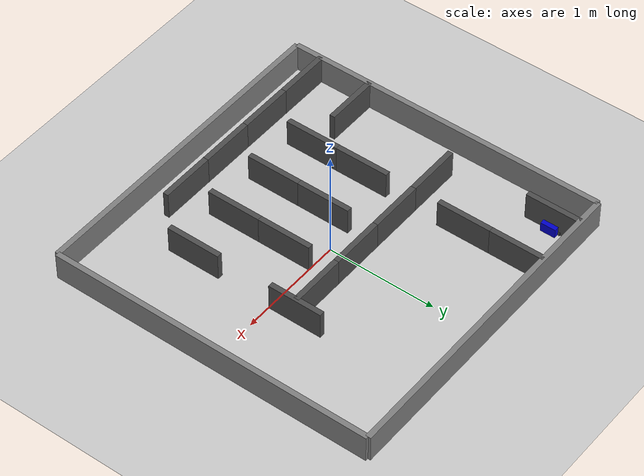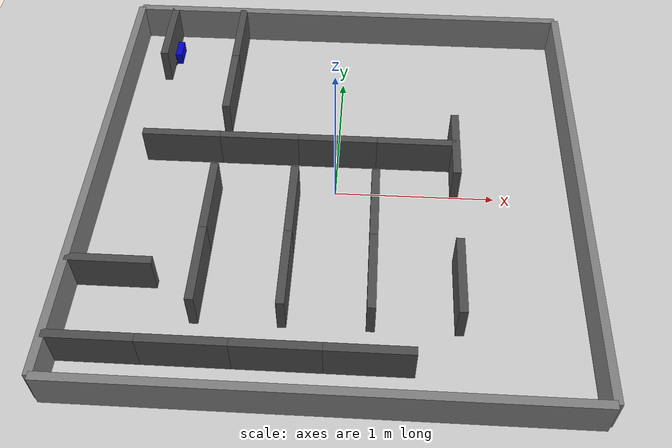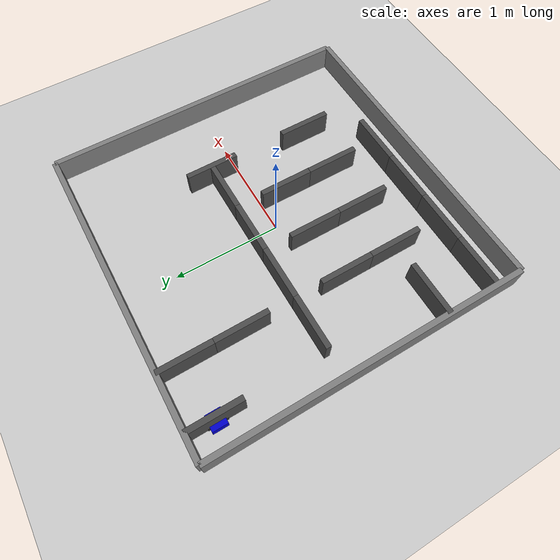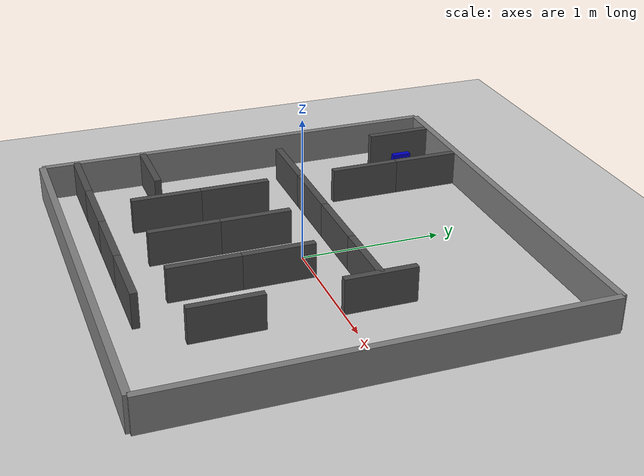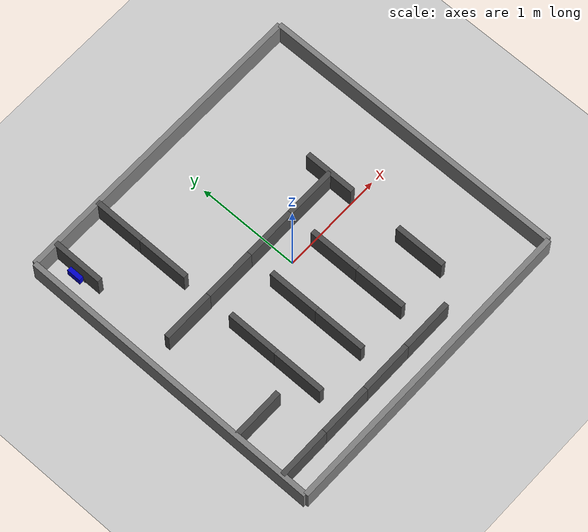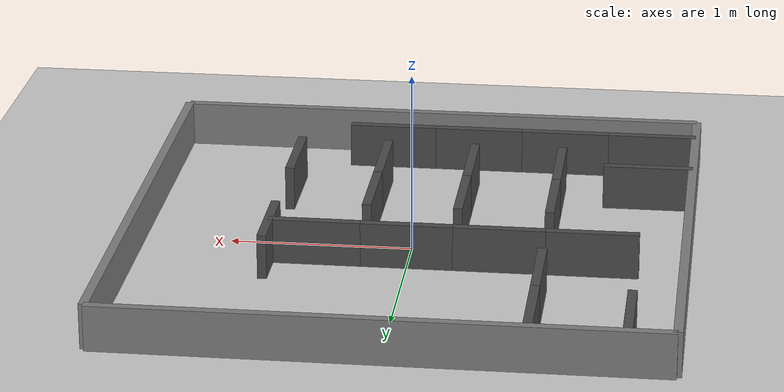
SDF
<?xml version="1.0" ?>
<sdf version="1.8">
  <world name="maze_world">

    <!-- Physics -->
    <physics name="1ms" type="ignored">
      <max_step_size>0.001</max_step_size>
      <real_time_factor>1.0</real_time_factor>
    </physics>

    <!-- Plugin for physics -->
    <plugin
      filename="gz-sim-physics-system"
      name="gz::sim::systems::Physics">
    </plugin>

    <!-- Plugin for user commands -->
    <plugin
      filename="gz-sim-user-commands-system"
      name="gz::sim::systems::UserCommands">
    </plugin>

    <!-- Plugin for scene broadcasting -->
    <plugin
      filename="gz-sim-scene-broadcaster-system"
      name="gz::sim::systems::SceneBroadcaster">
    </plugin>

    <!-- Lighting -->
    <light type="directional" name="sun">
      <cast_shadows>true</cast_shadows>
      <pose>0 0 10 0 0 0</pose>
      <diffuse>0.8 0.8 0.8 1</diffuse>
      <specular>0.2 0.2 0.2 1</specular>
      <attenuation>
        <range>1000</range>
        <constant>0.9</constant>
        <linear>0.01</linear>
        <quadratic>0.001</quadratic>
      </attenuation>
      <direction>-0.5 0.1 -0.9</direction>
    </light>

    <!-- Ground Plane -->
    <model name="ground_plane">
      <static>true</static>
      <link name="link">
        <collision name="collision">
          <geometry>
            <plane>
              <normal>0 0 1</normal>
              <size>10 10</size>
            </plane>
          </geometry>
        </collision>
        <visual name="visual">
          <geometry>
            <plane>
              <normal>0 0 1</normal>
              <size>10 10</size>
            </plane>
          </geometry>
          <material>
            <ambient>0.8 0.8 0.8 1</ambient>
            <diffuse>0.8 0.8 0.8 1</diffuse>
            <specular>0.8 0.8 0.8 1</specular>
          </material>
        </visual>
      </link>
    </model>

    <!-- Outer boundary walls (3m x 3m maze) -->
    <!-- Bottom wall -->
    <model name="wall_bottom">
      <pose>0 -1.5 0.125 0 0 0</pose>
      <static>true</static>
      <link name="link">
        <collision name="collision">
          <geometry>
            <box>
              <size>3.0 0.05 0.25</size>
            </box>
          </geometry>
        </collision>
        <visual name="visual">
          <geometry>
            <box>
              <size>3.0 0.05 0.25</size>
            </box>
          </geometry>
          <material>
            <ambient>0.5 0.5 0.5 1</ambient>
            <diffuse>0.5 0.5 0.5 1</diffuse>
          </material>
        </visual>
      </link>
    </model>

    <!-- Top wall -->
    <model name="wall_top">
      <pose>0 1.5 0.125 0 0 0</pose>
      <static>true</static>
      <link name="link">
        <collision name="collision">
          <geometry>
            <box>
              <size>3.0 0.05 0.25</size>
            </box>
          </geometry>
        </collision>
        <visual name="visual">
          <geometry>
            <box>
              <size>3.0 0.05 0.25</size>
            </box>
          </geometry>
          <material>
            <ambient>0.5 0.5 0.5 1</ambient>
            <diffuse>0.5 0.5 0.5 1</diffuse>
          </material>
        </visual>
      </link>
    </model>

    <!-- Left wall -->
    <model name="wall_left">
      <pose>-1.5 0 0.125 0 0 0</pose>
      <static>true</static>
      <link name="link">
        <collision name="collision">
          <geometry>
            <box>
              <size>0.05 3.0 0.25</size>
            </box>
          </geometry>
        </collision>
        <visual name="visual">
          <geometry>
            <box>
              <size>0.05 3.0 0.25</size>
            </box>
          </geometry>
          <material>
            <ambient>0.5 0.5 0.5 1</ambient>
            <diffuse>0.5 0.5 0.5 1</diffuse>
          </material>
        </visual>
      </link>
    </model>

    <!-- Right wall -->
    <model name="wall_right">
      <pose>1.5 0 0.125 0 0 0</pose>
      <static>true</static>
      <link name="link">
        <collision name="collision">
          <geometry>
            <box>
              <size>0.05 3.0 0.25</size>
            </box>
          </geometry>
        </collision>
        <visual name="visual">
          <geometry>
            <box>
              <size>0.05 3.0 0.25</size>
            </box>
          </geometry>
          <material>
            <ambient>0.5 0.5 0.5 1</ambient>
            <diffuse>0.5 0.5 0.5 1</diffuse>
          </material>
        </visual>
      </link>
    </model>

    <!-- Internal maze walls based on the figure -->
    <!-- Row 0 (top) walls - reading from the image -->
    <model name="wall_r0_c0_right">
      <pose>-1.25 1.25 0.125 0 0 0</pose>
      <static>true</static>
      <link name="link">
        <collision name="collision">
          <geometry>
            <box>
              <size>0.05 0.5 0.25</size>
            </box>
          </geometry>
        </collision>
        <visual name="visual">
          <geometry>
            <box>
              <size>0.05 0.5 0.25</size>
            </box>
          </geometry>
          <material>
            <ambient>0.3 0.3 0.3 1</ambient>
            <diffuse>0.3 0.3 0.3 1</diffuse>
          </material>
        </visual>
      </link>
    </model>

    <model name="wall_r0_c1_right">
      <pose>-0.75 1.25 0.125 0 0 0</pose>
      <static>true</static>
      <link name="link">
        <collision name="collision">
          <geometry>
            <box>
              <size>0.05 0.5 0.25</size>
            </box>
          </geometry>
        </collision>
        <visual name="visual">
          <geometry>
            <box>
              <size>0.05 0.5 0.25</size>
            </box>
          </geometry>
          <material>
            <ambient>0.3 0.3 0.3 1</ambient>
            <diffuse>0.3 0.3 0.3 1</diffuse>
          </material>
        </visual>
      </link>
    </model>

    <!-- Row 1 walls -->
    <model name="wall_r1_c1_right">
      <pose>-0.75 0.75 0.125 0 0 0</pose>
      <static>true</static>
      <link name="link">
        <collision name="collision">
          <geometry>
            <box>
              <size>0.05 0.5 0.25</size>
            </box>
          </geometry>
        </collision>
        <visual name="visual">
          <geometry>
            <box>
              <size>0.05 0.5 0.25</size>
            </box>
          </geometry>
          <material>
            <ambient>0.3 0.3 0.3 1</ambient>
            <diffuse>0.3 0.3 0.3 1</diffuse>
          </material>
        </visual>
      </link>
    </model>

    <!-- Row 2 walls -->
    <model name="wall_r2_c1_bottom">
      <pose>-1.0 0.25 0.125 0 0 0</pose>
      <static>true</static>
      <link name="link">
        <collision name="collision">
          <geometry>
            <box>
              <size>0.5 0.05 0.25</size>
            </box>
          </geometry>
        </collision>
        <visual name="visual">
          <geometry>
            <box>
              <size>0.5 0.05 0.25</size>
            </box>
          </geometry>
          <material>
            <ambient>0.3 0.3 0.3 1</ambient>
            <diffuse>0.3 0.3 0.3 1</diffuse>
          </material>
        </visual>
      </link>
    </model>

    <model name="wall_r2_c2_bottom">
      <pose>-0.5 0.25 0.125 0 0 0</pose>
      <static>true</static>
      <link name="link">
        <collision name="collision">
          <geometry>
            <box>
              <size>0.5 0.05 0.25</size>
            </box>
          </geometry>
        </collision>
        <visual name="visual">
          <geometry>
            <box>
              <size>0.5 0.05 0.25</size>
            </box>
          </geometry>
          <material>
            <ambient>0.3 0.3 0.3 1</ambient>
            <diffuse>0.3 0.3 0.3 1</diffuse>
          </material>
        </visual>
      </link>
    </model>

    <model name="wall_r2_c3_bottom">
      <pose>0.0 0.25 0.125 0 0 0</pose>
      <static>true</static>
      <link name="link">
        <collision name="collision">
          <geometry>
            <box>
              <size>0.5 0.05 0.25</size>
            </box>
          </geometry>
        </collision>
        <visual name="visual">
          <geometry>
            <box>
              <size>0.5 0.05 0.25</size>
            </box>
          </geometry>
          <material>
            <ambient>0.3 0.3 0.3 1</ambient>
            <diffuse>0.3 0.3 0.3 1</diffuse>
          </material>
        </visual>
      </link>
    </model>

    <model name="wall_r2_c4_bottom">
      <pose>0.5 0.25 0.125 0 0 0</pose>
      <static>true</static>
      <link name="link">
        <collision name="collision">
          <geometry>
            <box>
              <size>0.5 0.05 0.25</size>
            </box>
          </geometry>
        </collision>
        <visual name="visual">
          <geometry>
            <box>
              <size>0.5 0.05 0.25</size>
            </box>
          </geometry>
          <material>
            <ambient>0.3 0.3 0.3 1</ambient>
            <diffuse>0.3 0.3 0.3 1</diffuse>
          </material>
        </visual>
      </link>
    </model>

    <model name="wall_r2_c4_right">
      <pose>0.75 0.25 0.125 0 0 0</pose>
      <static>true</static>
      <link name="link">
        <collision name="collision">
          <geometry>
            <box>
              <size>0.05 0.5 0.25</size>
            </box>
          </geometry>
        </collision>
        <visual name="visual">
          <geometry>
            <box>
              <size>0.05 0.5 0.25</size>
            </box>
          </geometry>
          <material>
            <ambient>0.3 0.3 0.3 1</ambient>
            <diffuse>0.3 0.3 0.3 1</diffuse>
          </material>
        </visual>
      </link>
    </model>

    <!-- Row 3 walls -->
    <model name="wall_r3_c1_right">
      <pose>-0.75 -0.25 0.125 0 0 0</pose>
      <static>true</static>
      <link name="link">
        <collision name="collision">
          <geometry>
            <box>
              <size>0.05 0.5 0.25</size>
            </box>
          </geometry>
        </collision>
        <visual name="visual">
          <geometry>
            <box>
              <size>0.05 0.5 0.25</size>
            </box>
          </geometry>
          <material>
            <ambient>0.3 0.3 0.3 1</ambient>
            <diffuse>0.3 0.3 0.3 1</diffuse>
          </material>
        </visual>
      </link>
    </model>

    <model name="wall_r3_c2_right">
      <pose>-0.25 -0.25 0.125 0 0 0</pose>
      <static>true</static>
      <link name="link">
        <collision name="collision">
          <geometry>
            <box>
              <size>0.05 0.5 0.25</size>
            </box>
          </geometry>
        </collision>
        <visual name="visual">
          <geometry>
            <box>
              <size>0.05 0.5 0.25</size>
            </box>
          </geometry>
          <material>
            <ambient>0.3 0.3 0.3 1</ambient>
            <diffuse>0.3 0.3 0.3 1</diffuse>
          </material>
        </visual>
      </link>
    </model>

    <model name="wall_r3_c3_right">
      <pose>0.25 -0.25 0.125 0 0 0</pose>
      <static>true</static>
      <link name="link">
        <collision name="collision">
          <geometry>
            <box>
              <size>0.05 0.5 0.25</size>
            </box>
          </geometry>
        </collision>
        <visual name="visual">
          <geometry>
            <box>
              <size>0.05 0.5 0.25</size>
            </box>
          </geometry>
          <material>
            <ambient>0.3 0.3 0.3 1</ambient>
            <diffuse>0.3 0.3 0.3 1</diffuse>
          </material>
        </visual>
      </link>
    </model>

    <!-- Row 4 walls -->
    <model name="wall_r4_c0_bottom">
      <pose>-1.25 -0.75 0.125 0 0 0</pose>
      <static>true</static>
      <link name="link">
        <collision name="collision">
          <geometry>
            <box>
              <size>0.5 0.05 0.25</size>
            </box>
          </geometry>
        </collision>
        <visual name="visual">
          <geometry>
            <box>
              <size>0.5 0.05 0.25</size>
            </box>
          </geometry>
          <material>
            <ambient>0.3 0.3 0.3 1</ambient>
            <diffuse>0.3 0.3 0.3 1</diffuse>
          </material>
        </visual>
      </link>
    </model>

    <model name="wall_r4_c1_right">
      <pose>-0.75 -0.75 0.125 0 0 0</pose>
      <static>true</static>
      <link name="link">
        <collision name="collision">
          <geometry>
            <box>
              <size>0.05 0.5 0.25</size>
            </box>
          </geometry>
        </collision>
        <visual name="visual">
          <geometry>
            <box>
              <size>0.05 0.5 0.25</size>
            </box>
          </geometry>
          <material>
            <ambient>0.3 0.3 0.3 1</ambient>
            <diffuse>0.3 0.3 0.3 1</diffuse>
          </material>
        </visual>
      </link>
    </model>

    <model name="wall_r4_c2_right">
      <pose>-0.25 -0.75 0.125 0 0 0</pose>
      <static>true</static>
      <link name="link">
        <collision name="collision">
          <geometry>
            <box>
              <size>0.05 0.5 0.25</size>
            </box>
          </geometry>
        </collision>
        <visual name="visual">
          <geometry>
            <box>
              <size>0.05 0.5 0.25</size>
            </box>
          </geometry>
          <material>
            <ambient>0.3 0.3 0.3 1</ambient>
            <diffuse>0.3 0.3 0.3 1</diffuse>
          </material>
        </visual>
      </link>
    </model>

    <model name="wall_r4_c3_right">
      <pose>0.25 -0.75 0.125 0 0 0</pose>
      <static>true</static>
      <link name="link">
        <collision name="collision">
          <geometry>
            <box>
              <size>0.05 0.5 0.25</size>
            </box>
          </geometry>
        </collision>
        <visual name="visual">
          <geometry>
            <box>
              <size>0.05 0.5 0.25</size>
            </box>
          </geometry>
          <material>
            <ambient>0.3 0.3 0.3 1</ambient>
            <diffuse>0.3 0.3 0.3 1</diffuse>
          </material>
        </visual>
      </link>
    </model>

    <model name="wall_r4_c4_right">
      <pose>0.75 -0.75 0.125 0 0 0</pose>
      <static>true</static>
      <link name="link">
        <collision name="collision">
          <geometry>
            <box>
              <size>0.05 0.5 0.25</size>
            </box>
          </geometry>
        </collision>
        <visual name="visual">
          <geometry>
            <box>
              <size>0.05 0.5 0.25</size>
            </box>
          </geometry>
          <material>
            <ambient>0.3 0.3 0.3 1</ambient>
            <diffuse>0.3 0.3 0.3 1</diffuse>
          </material>
        </visual>
      </link>
    </model>

    <!-- Row 5 (bottom) walls -->
    <model name="wall_r5_c0_bottom">
      <pose>-1.25 -1.25 0.125 0 0 0</pose>
      <static>true</static>
      <link name="link">
        <collision name="collision">
          <geometry>
            <box>
              <size>0.5 0.05 0.25</size>
            </box>
          </geometry>
        </collision>
        <visual name="visual">
          <geometry>
            <box>
              <size>0.5 0.05 0.25</size>
            </box>
          </geometry>
          <material>
            <ambient>0.3 0.3 0.3 1</ambient>
            <diffuse>0.3 0.3 0.3 1</diffuse>
          </material>
        </visual>
      </link>
    </model>

    <model name="wall_r5_c1_bottom">
      <pose>-0.75 -1.25 0.125 0 0 0</pose>
      <static>true</static>
      <link name="link">
        <collision name="collision">
          <geometry>
            <box>
              <size>0.5 0.05 0.25</size>
            </box>
          </geometry>
        </collision>
        <visual name="visual">
          <geometry>
            <box>
              <size>0.5 0.05 0.25</size>
            </box>
          </geometry>
          <material>
            <ambient>0.3 0.3 0.3 1</ambient>
            <diffuse>0.3 0.3 0.3 1</diffuse>
          </material>
        </visual>
      </link>
    </model>

    <model name="wall_r5_c2_bottom">
      <pose>-0.25 -1.25 0.125 0 0 0</pose>
      <static>true</static>
      <link name="link">
        <collision name="collision">
          <geometry>
            <box>
              <size>0.5 0.05 0.25</size>
            </box>
          </geometry>
        </collision>
        <visual name="visual">
          <geometry>
            <box>
              <size>0.5 0.05 0.25</size>
            </box>
          </geometry>
          <material>
            <ambient>0.3 0.3 0.3 1</ambient>
            <diffuse>0.3 0.3 0.3 1</diffuse>
          </material>
        </visual>
      </link>
    </model>

    <model name="wall_r5_c3_bottom">
      <pose>0.25 -1.25 0.125 0 0 0</pose>
      <static>true</static>
      <link name="link">
        <collision name="collision">
          <geometry>
            <box>
              <size>0.5 0.05 0.25</size>
            </box>
          </geometry>
        </collision>
        <visual name="visual">
          <geometry>
            <box>
              <size>0.5 0.05 0.25</size>
            </box>
          </geometry>
          <material>
            <ambient>0.3 0.3 0.3 1</ambient>
            <diffuse>0.3 0.3 0.3 1</diffuse>
          </material>
        </visual>
      </link>
    </model>

    <!-- TurtleBot3 Burger Robot -->
    <model name="turtlebot3_burger">
      <pose>-1.25 1.25 0.01 0 0 0</pose>
      <static>false</static>

      <!-- Base Link -->
      <link name="base_link">
        <inertial>
          <mass>1.0</mass>
          <inertia>
            <ixx>0.001</ixx>
            <iyy>0.001</iyy>
            <izz>0.001</izz>
          </inertia>
        </inertial>

        <collision name="base_collision">
          <geometry>
            <box>
              <size>0.140 0.140 0.143</size>
            </box>
          </geometry>
        </collision>

        <visual name="base_visual">
          <geometry>
            <box>
              <size>0.140 0.140 0.143</size>
            </box>
          </geometry>
          <material>
            <ambient>0.0 0.0 0.8 1.0</ambient>
            <diffuse>0.0 0.0 0.8 1.0</diffuse>
            <specular>0.1 0.1 0.1 1.0</specular>
          </material>
        </visual>

        <!-- LiDAR Sensor -->
        <sensor name="lidar" type="gpu_lidar">
          <pose>0 0 0.08 0 0 0</pose>
          <topic>scan</topic>
          <update_rate>5</update_rate>
          <lidar>
            <scan>
              <horizontal>
                <samples>360</samples>
                <resolution>1</resolution>
                <min_angle>0.0</min_angle>
                <max_angle>6.28318</max_angle>
              </horizontal>
            </scan>
            <range>
              <min>0.12</min>
              <max>3.5</max>
              <resolution>0.015</resolution>
            </range>
            <noise>
              <type>gaussian</type>
              <mean>0.0</mean>
              <stddev>0.01</stddev>
            </noise>
          </lidar>
          <always_on>1</always_on>
          <visualize>true</visualize>
        </sensor>
      </link>

      <!-- Left Wheel -->
      <link name="left_wheel">
        <pose relative_to="base_link">0 0.08 0 -1.5707 0 0</pose>
        <inertial>
          <mass>0.1</mass>
          <inertia>
            <ixx>0.00001</ixx>
            <iyy>0.00001</iyy>
            <izz>0.00001</izz>
          </inertia>
        </inertial>
        <collision name="left_wheel_collision">
          <geometry>
            <cylinder>
              <radius>0.033</radius>
              <length>0.018</length>
            </cylinder>
          </geometry>
          <surface>
            <friction>
              <ode>
                <mu>1.0</mu>
                <mu2>1.0</mu2>
              </ode>
            </friction>
          </surface>
        </collision>
        <visual name="left_wheel_visual">
          <geometry>
            <cylinder>
              <radius>0.033</radius>
              <length>0.018</length>
            </cylinder>
          </geometry>
          <material>
            <ambient>0.2 0.2 0.2 1.0</ambient>
            <diffuse>0.2 0.2 0.2 1.0</diffuse>
          </material>
        </visual>
      </link>

      <!-- Right Wheel -->
      <link name="right_wheel">
        <pose relative_to="base_link">0 -0.08 0 -1.5707 0 0</pose>
        <inertial>
          <mass>0.1</mass>
          <inertia>
            <ixx>0.00001</ixx>
            <iyy>0.00001</iyy>
            <izz>0.00001</izz>
          </inertia>
        </inertial>
        <collision name="right_wheel_collision">
          <geometry>
            <cylinder>
              <radius>0.033</radius>
              <length>0.018</length>
            </cylinder>
          </geometry>
          <surface>
            <friction>
              <ode>
                <mu>1.0</mu>
                <mu2>1.0</mu2>
              </ode>
            </friction>
          </surface>
        </collision>
        <visual name="right_wheel_visual">
          <geometry>
            <cylinder>
              <radius>0.033</radius>
              <length>0.018</length>
            </cylinder>
          </geometry>
          <material>
            <ambient>0.2 0.2 0.2 1.0</ambient>
            <diffuse>0.2 0.2 0.2 1.0</diffuse>
          </material>
        </visual>
      </link>

      <!-- Caster Wheel (passive) -->
      <link name="caster">
        <pose relative_to="base_link">-0.05 0 -0.05 0 0 0</pose>
        <inertial>
          <mass>0.01</mass>
          <inertia>
            <ixx>0.00001</ixx>
            <iyy>0.00001</iyy>
            <izz>0.00001</izz>
          </inertia>
        </inertial>
        <collision name="caster_collision">
          <geometry>
            <sphere>
              <radius>0.01</radius>
            </sphere>
          </geometry>
          <surface>
            <friction>
              <ode>
                <mu>0.0</mu>
                <mu2>0.0</mu2>
              </ode>
            </friction>
          </surface>
        </collision>
        <visual name="caster_visual">
          <geometry>
            <sphere>
              <radius>0.01</radius>
            </sphere>
          </geometry>
          <material>
            <ambient>0.3 0.3 0.3 1.0</ambient>
            <diffuse>0.3 0.3 0.3 1.0</diffuse>
          </material>
        </visual>
      </link>

      <!-- Joints -->
      <joint name="left_wheel_joint" type="revolute">
        <parent>base_link</parent>
        <child>left_wheel</child>
        <axis>
          <xyz>0 0 1</xyz>
          <limit>
            <lower>-1.79769e+308</lower>
            <upper>1.79769e+308</upper>
          </limit>
        </axis>
      </joint>

      <joint name="right_wheel_joint" type="revolute">
        <parent>base_link</parent>
        <child>right_wheel</child>
        <axis>
          <xyz>0 0 1</xyz>
          <limit>
            <lower>-1.79769e+308</lower>
            <upper>1.79769e+308</upper>
          </limit>
        </axis>
      </joint>

      <joint name="caster_joint" type="ball">
        <parent>base_link</parent>
        <child>caster</child>
      </joint>

      <!-- Differential Drive Plugin -->
      <plugin filename="gz-sim-diff-drive-system" name="gz::sim::systems::DiffDrive">
        <left_joint>left_wheel_joint</left_joint>
        <right_joint>right_wheel_joint</right_joint>
        <wheel_separation>0.160</wheel_separation>
        <wheel_radius>0.033</wheel_radius>
        <odom_publish_frequency>30</odom_publish_frequency>
        <topic>cmd_vel</topic>
        <odom_topic>odom</odom_topic>
        <frame_id>odom</frame_id>
        <child_frame_id>base_link</child_frame_id>
      </plugin>

      <!-- Sensors Plugin -->
      <plugin filename="gz-sim-sensors-system" name="gz::sim::systems::Sensors">
        <render_engine>ogre2</render_engine>
      </plugin>
    </model>

  </world>
</sdf>
